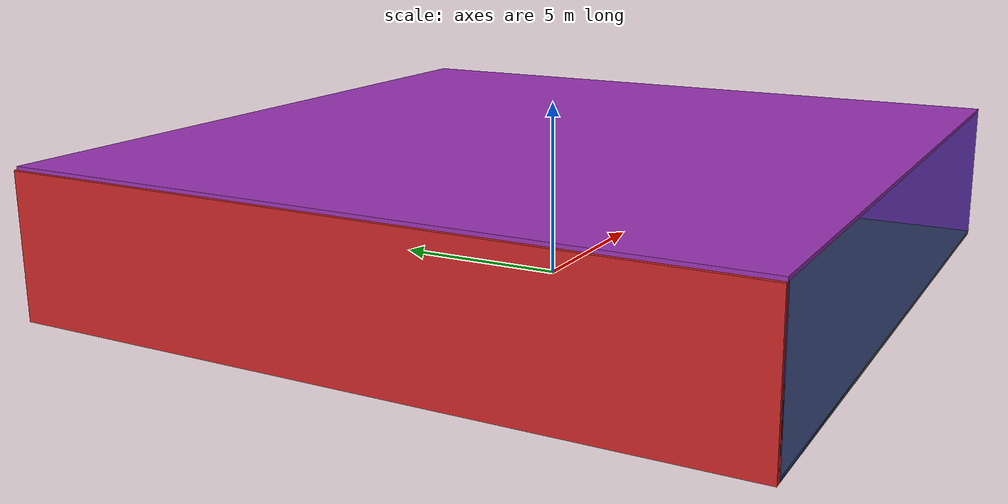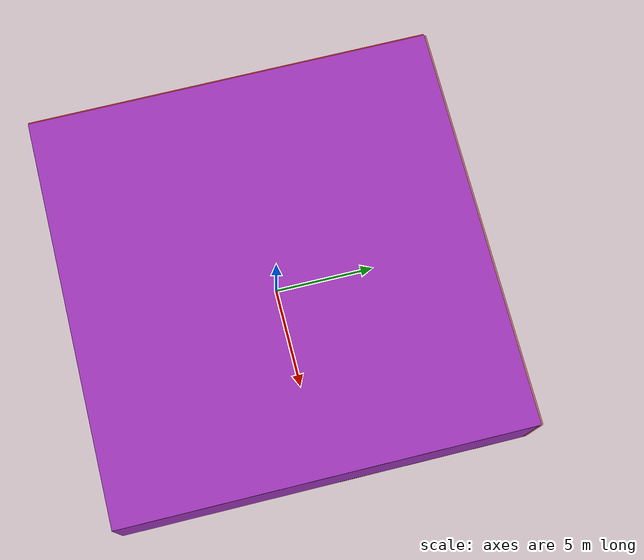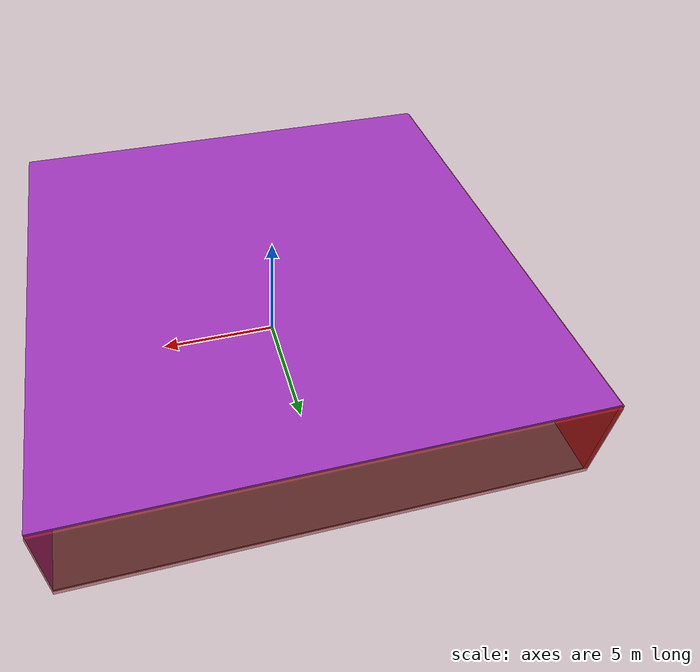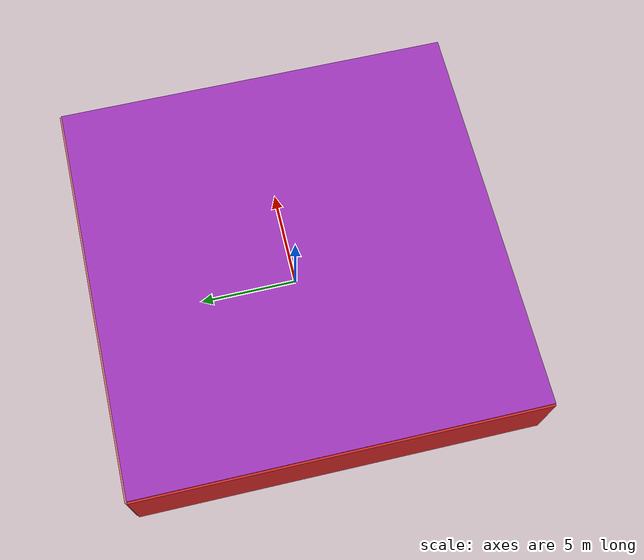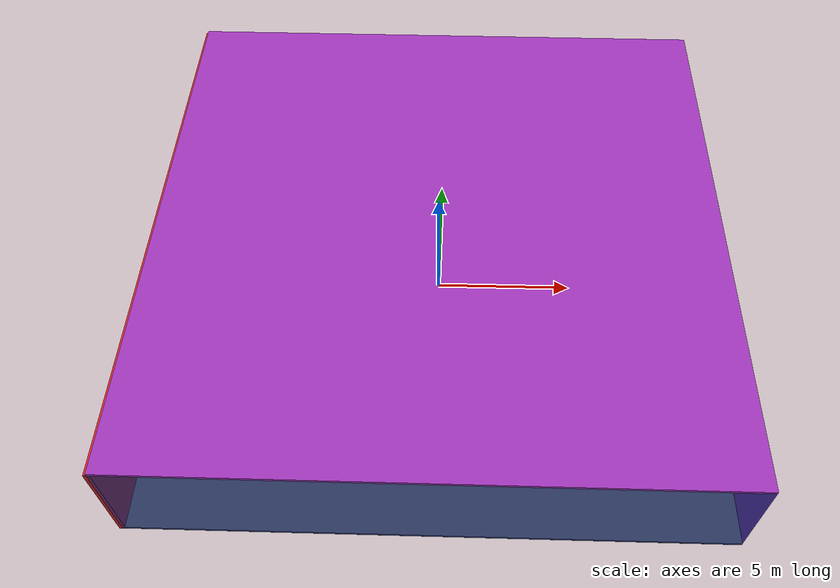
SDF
<sdf version="1.4">
 <world name="default">
  <physics type="ode">
   <max_step_size>0.001</max_step_size>
   <real_time_factor>1</real_time_factor>
   <real_time_update_rate>1000</real_time_update_rate>
   <gravity>0 0 -9.8</gravity>
  </physics>
  <scene><ambient>0.4 0.4 0.4 1</ambient><background>0.7 0.7 0.7 1</background><shadows>1</shadows></scene>
  <model name="Surrounding">
   <static>1</static>
   <link name="Ceiling">
    <collision name="Ceiling_Collision"><geometry><box><size>20 20 0.1</size></box></geometry></collision>
    <visual name="Ceiling_Visual">
     <geometry><box><size>20 20 0.1</size></box></geometry>
     <material>
      <script><uri>file://media/materials/scripts/gazebo.material</uri><name>Gazebo/Purple</name></script>
     </material>
    </visual>
    <pose>0 0 4.05 0 0 0</pose>
   </link>
   <link name="Wall_South">
    <collision name="Wall_South_Collision">
     <geometry><box><size>20 0 4</size></box></geometry>
     <pose>0 0 2 0 -0 0</pose>
    </collision>
    <visual name="Wall_South_Visual">
     <pose>0 0 2 0 -0 0</pose>
     <geometry><box><size>20 0 4</size></box></geometry>
     <material>
      <script><uri>file://media/materials/scripts/gazebo.material</uri><name>Gazebo/BlueTransparent</name></script>
     </material>
    </visual>
    <velocity_decay><linear>0</linear><angular>0</angular></velocity_decay>
    <pose>0 -10 0 0 -0 0</pose>
   </link>
   <link name="Wall_East">
    <collision name="Wall_21_Collision">
     <geometry><box><size>20 0 4</size></box></geometry>
     <pose>0 0 2 0 -0 0</pose>
    </collision>
    <visual name="Wall_21_Visual">
     <pose>0 0 2 0 -0 0</pose>
     <geometry><box><size>20 0 4</size></box></geometry>
     <material>
      <script><uri>file://media/materials/scripts/gazebo.material</uri><name>Gazebo/Purple</name></script>
     </material>
    </visual>
    <velocity_decay><linear>0</linear><angular>0</angular></velocity_decay>
    <pose>10 0 0 0 -0 1.5708</pose>
   </link>
   <link name="Wall_North">
    <collision name="Wall_22_Collision">
     <geometry><box><size>20 0.2 4</size></box></geometry>
     <pose>0 0 2 0 -0 0</pose>
    </collision>
    <visual name="Wall_22_Visual">
     <pose>0 0 2 0 -0 0</pose>
     <geometry><box><size>20 0.2 4</size></box></geometry>
     <material>
      <script><uri>file://media/materials/scripts/gazebo.material</uri><name>Gazebo/RedTransparent</name></script>
     </material>
    </visual>
    <velocity_decay><linear>0</linear><angular>0</angular></velocity_decay>
    <pose>0 10 0 0 -0 0</pose>
   </link>
   <link name="Wall_West">
    <collision name="Wall_23_Collision">
     <geometry><box><size>20 0.2 4</size></box></geometry>
     <pose>0 0 2 0 -0 0</pose>
    </collision>
    <visual name="Wall_23_Visual">
     <pose>0 0 2 0 -0 0</pose>
     <geometry><box><size>20 0.2 4</size></box></geometry>
     <material>
      <script><uri>file://media/materials/scripts/gazebo.material</uri><name>Gazebo/RedGlow</name></script>
     </material>
    </visual>
    <velocity_decay><linear>0</linear><angular>0</angular></velocity_decay>
    <pose>-10 0 0 0 0 -1.5708</pose>
   </link>
   <link name="Ground_link">
    <collision name="collision">
     <pose>0 0 .05 0 -0 0</pose>
     <geometry><box><size>20 20 0.1</size></box></geometry>
    </collision>
    <visual name="visual">
     <pose>0 0 .05 0 -0 0</pose>
     <geometry><box><size>20 20 0.1</size></box></geometry>
     <material>
      <script><uri>file://media/materials/scripts/gazebo.material</uri><name>Gazebo/DarkGrey</name></script>
     </material>
    </visual>
   </link>
   <static>1</static>
  </model>
  <spherical_coordinates>
   <surface_model>EARTH_WGS84</surface_model>
   <latitude_deg>0</latitude_deg>
   <longitude_deg>0</longitude_deg>
   <elevation>0</elevation>
   <heading_deg>0</heading_deg>
  </spherical_coordinates>
  <light name="lightball_0" type="diffuse">
   <diffuse>0.8 0.8 0.8 1</diffuse>
   <specular>0.2 0.2 0.2 1</specular>
   <attenuation>
    <range>100</range>
    <constant>0.7</constant>
    <linear>0.01</linear>
    <quadratic>0.001</quadratic>
   </attenuation>
   <direction>-0.5 0.1 -0.9</direction>
   <pose>1.99674483248 -2.60590582171 2.05477362475 0 0 0</pose>
  </light>
  <light name="lightball_1" type="diffuse">
   <diffuse>0.8 0.8 0.8 1</diffuse>
   <specular>0.2 0.2 0.2 1</specular>
   <attenuation>
    <range>100</range>
    <constant>0.7</constant>
    <linear>0.01</linear>
    <quadratic>0.001</quadratic>
   </attenuation>
   <direction>-0.5 0.1 -0.9</direction>
   <pose>-9.90488779601 -8.73736327879 0.961607403091 0 0 0</pose>
  </light>
  <light name="lightball_2" type="diffuse">
   <diffuse>0.8 0.8 0.8 1</diffuse>
   <specular>0.2 0.2 0.2 1</specular>
   <attenuation>
    <range>100</range>
    <constant>0.7</constant>
    <linear>0.01</linear>
    <quadratic>0.001</quadratic>
   </attenuation>
   <direction>-0.5 0.1 -0.9</direction>
   <pose>2.09967340462 1.56100008978 1.80277630033 0 0 0</pose>
  </light>
  <light name="lightball_3" type="diffuse">
   <diffuse>0.8 0.8 0.8 1</diffuse>
   <specular>0.2 0.2 0.2 1</specular>
   <attenuation>
    <range>100</range>
    <constant>0.7</constant>
    <linear>0.01</linear>
    <quadratic>0.001</quadratic>
   </attenuation>
   <direction>-0.5 0.1 -0.9</direction>
   <pose>9.62596098336 3.38931894327 3.61881628895 0 0 0</pose>
  </light>
  <light name="lightball_4" type="diffuse">
   <diffuse>0.8 0.8 0.8 1</diffuse>
   <specular>0.2 0.2 0.2 1</specular>
   <attenuation>
    <range>100</range>
    <constant>0.7</constant>
    <linear>0.01</linear>
    <quadratic>0.001</quadratic>
   </attenuation>
   <direction>-0.5 0.1 -0.9</direction>
   <pose>-0.671951516118 -0.00548279545331 2.53966320438 0 0 0</pose>
  </light>
  <light name="lightball_5" type="diffuse">
   <diffuse>0.8 0.8 0.8 1</diffuse>
   <specular>0.2 0.2 0.2 1</specular>
   <attenuation>
    <range>100</range>
    <constant>0.7</constant>
    <linear>0.01</linear>
    <quadratic>0.001</quadratic>
   </attenuation>
   <direction>-0.5 0.1 -0.9</direction>
   <pose>-9.5500175523 -9.66477019386 0.955471891144 0 0 0</pose>
  </light>
  <include><uri>model://table</uri><pose>-0.798088222778 -4.19860351677 0 0 0 0.139977870624</pose></include>
  <include>
   <uri>model://construction_cone</uri>
   <pose>0.716856785895 -1.08904478906 0 0 0 1.74517792808</pose>
  </include>
 </world>
</sdf>

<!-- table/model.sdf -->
<sdf version="1.5">
  <model name="table">
    <static>true</static>
    <link name="link">
      <collision name="surface">
        <pose>0 0 1.0 0 0 0</pose>
        <geometry>
          <box>
            <size>1.5 0.8 0.03</size>
          </box>
        </geometry>
        <surface>
          <friction>
            <ode>
              <mu>0.6</mu>
              <mu2>0.6</mu2>
            </ode>
          </friction>
        </surface>
      </collision>
      <visual name="visual1">
        <pose>0 0 1.0 0 0 0</pose>
        <geometry>
          <box>
            <size>1.5 0.8 0.03</size>
          </box>
        </geometry>
        <material>
          <script>
            <uri>model://media/materials/scripts/gazebo.material</uri>
            <name>Gazebo/Wood</name>
          </script>
        </material>
      </visual>
      <collision name="front_left_leg">
        <pose>0.68 0.38 0.5 0 0 0</pose>
        <geometry>
          <cylinder>
            <radius>0.02</radius>
            <length>1.0</length>
          </cylinder>
        </geometry>
      </collision>
      <visual name="front_left_leg">
        <pose>0.68 0.38 0.5 0 0 0</pose>
        <geometry>
          <cylinder>
            <radius>0.02</radius>
            <length>1.0</length>
          </cylinder>
        </geometry>
        <material>
          <script>
            <uri>model://media/materials/scripts/gazebo.material</uri>
            <name>Gazebo/Grey</name>
          </script>
        </material>
      </visual>
      <collision name="front_right_leg">
        <pose>0.68 -0.38 0.5 0 0 0</pose>
        <geometry>
          <cylinder>
            <radius>0.02</radius>
            <length>1.0</length>
          </cylinder>
        </geometry>
      </collision>
      <visual name="front_right_leg">
        <pose>0.68 -0.38 0.5 0 0 0</pose>
        <geometry>
          <cylinder>
            <radius>0.02</radius>
            <length>1.0</length>
          </cylinder>
        </geometry>
        <material>
          <script>
            <uri>model://media/materials/scripts/gazebo.material</uri>
            <name>Gazebo/Grey</name>
          </script>
        </material>
      </visual>
      <collision name="back_right_leg">
        <pose>-0.68 -0.38 0.5 0 0 0</pose>
        <geometry>
          <cylinder>
            <radius>0.02</radius>
            <length>1.0</length>
          </cylinder>
        </geometry>
      </collision>
      <visual name="back_right_leg">
        <pose>-0.68 -0.38 0.5 0 0 0</pose>
        <geometry>
          <cylinder>
            <radius>0.02</radius>
            <length>1.0</length>
          </cylinder>
        </geometry>
        <material>
          <script>
            <uri>model://media/materials/scripts/gazebo.material</uri>
            <name>Gazebo/Grey</name>
          </script>
        </material>
      </visual>
      <collision name="back_left_leg">
        <pose>-0.68 0.38 0.5 0 0 0</pose>
        <geometry>
          <cylinder>
            <radius>0.02</radius>
            <length>1.0</length>
          </cylinder>
        </geometry>
      </collision>
      <visual name="back_left_leg">
        <pose>-0.68 0.38 0.5 0 0 0</pose>
        <geometry>
          <cylinder>
            <radius>0.02</radius>
            <length>1.0</length>
          </cylinder>
        </geometry>
        <material>
          <script>
            <uri>model://media/materials/scripts/gazebo.material</uri>
            <name>Gazebo/Grey</name>
          </script>
        </material>
      </visual>
    </link>
  </model>
</sdf>

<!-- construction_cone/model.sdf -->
<sdf version="1.5">
  <model name="Construction Cone">
    <link name="link">
      <collision name="collision">
        <geometry>
          <mesh>
            <scale>10 10 10</scale>
            <uri>file://isr-testbed/construction_cone/meshes/construction_cone.dae</uri>
          </mesh>
        </geometry>
      </collision>
      <visual name="visual">
        <geometry>
          <mesh>
            <scale>10 10 10</scale>
            <uri>file://isr-testbed/construction_cone/meshes/construction_cone.dae</uri>
          </mesh>
        </geometry>
      </visual>
    </link>
  </model>
</sdf>
